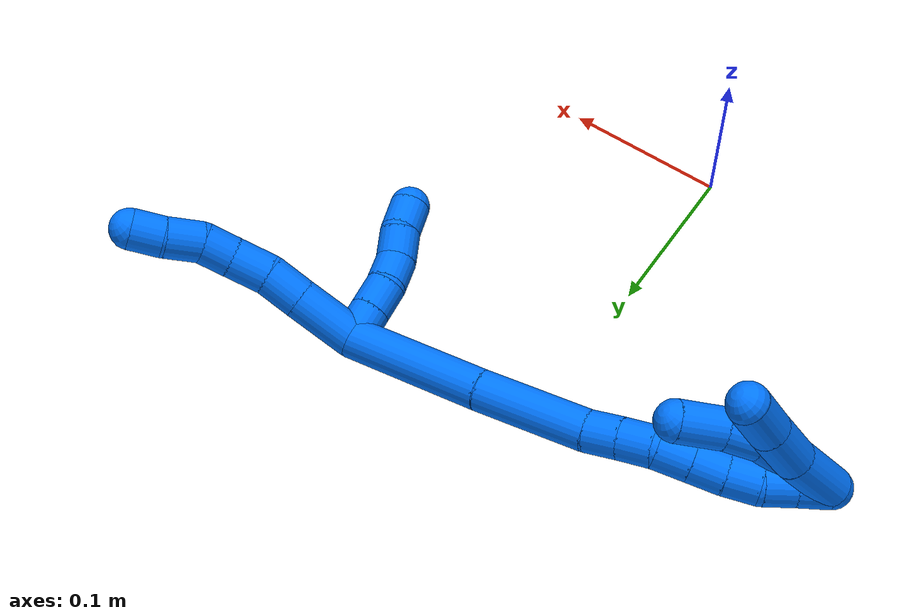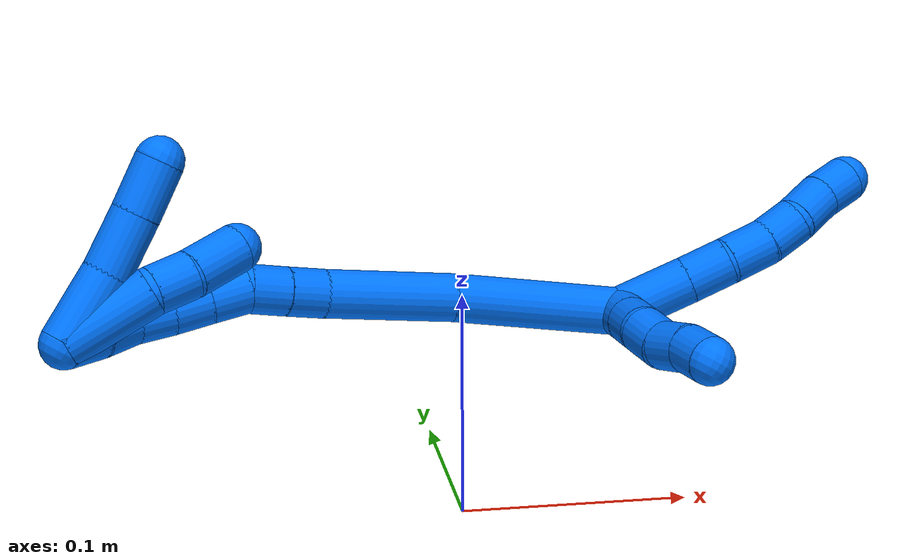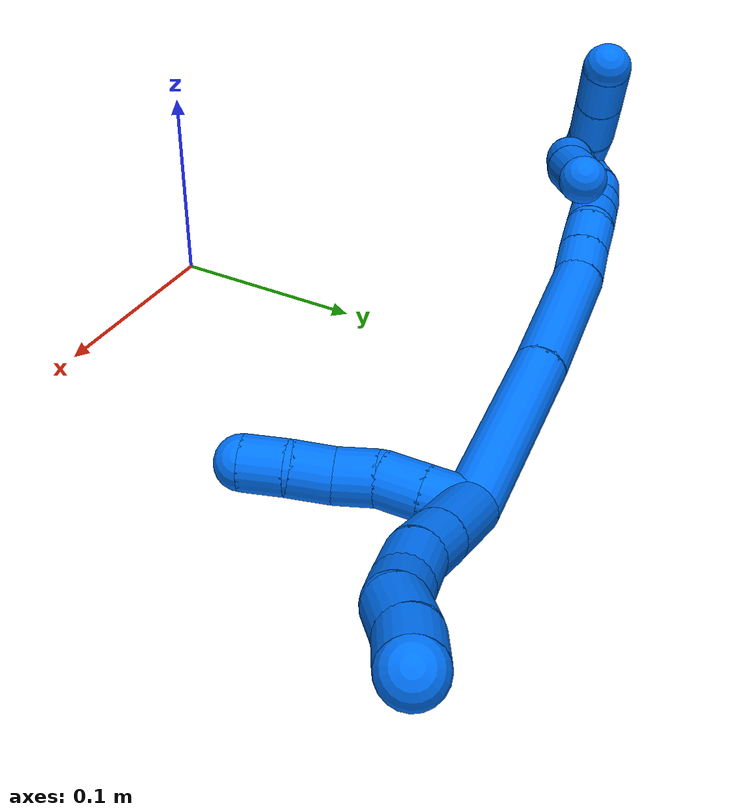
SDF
<sdf version="1.7">
 <world name="default">
  <model name="14">
   <static>0</static>
   <link name="14">
    <collision name="collision-cylinder-e_1_2_8">
     <pose>0.011351 0.003394 -0.015677 -2.92837 0.615837 -2.49242</pose>
     <geometry><cylinder><radius>0.0125</radius><length>0.0393</length></cylinder></geometry>
     <surface>
      <friction><ode><mu>1.16</mu><mu2>1.16</mu2><slip1>0</slip1><slip2>0</slip2></ode></friction>
      <contact><ode><kp>1e+06</kp><kd>1</kd><max_vel>0</max_vel><min_depth>0.001</min_depth></ode></contact>
     </surface>
    </collision>
    <visual name="visual-cylinder-e_1_2_8">
     <pose>0.011351 0.003394 -0.015677 -2.92837 0.615837 -2.49242</pose>
     <geometry><cylinder><radius>0.0125</radius><length>0.0393</length></cylinder></geometry>
     <material><ambient>0 0.462745 1 1</ambient></material>
    </visual>
    <collision name="collision-cylinder-e_2_8_9">
     <pose>0.029283 0.008958 -0.040862 -2.9172 0.593676 -2.43573</pose>
     <geometry><cylinder><radius>0.0125</radius><length>0.023532</length></cylinder></geometry>
     <surface>
      <friction><ode><mu>1.16</mu><mu2>1.16</mu2><slip1>0</slip1><slip2>0</slip2></ode></friction>
      <contact><ode><kp>1e+06</kp><kd>1</kd><max_vel>0</max_vel><min_depth>0.001</min_depth></ode></contact>
     </surface>
    </collision>
    <visual name="visual-cylinder-e_2_8_9">
     <pose>0.029283 0.008958 -0.040862 -2.9172 0.593676 -2.43573</pose>
     <geometry><cylinder><radius>0.0125</radius><length>0.023532</length></cylinder></geometry>
     <material><ambient>0 0.462745 1 1</ambient></material>
    </visual>
    <collision name="collision-cylinder-e_3_9_10">
     <pose>0.043103 0.01096 -0.059959 3.12401 0.646497 3.08911</pose>
     <geometry><cylinder><radius>0.0125</radius><length>0.024031</length></cylinder></geometry>
     <surface>
      <friction><ode><mu>1.16</mu><mu2>1.16</mu2><slip1>0</slip1><slip2>0</slip2></ode></friction>
      <contact><ode><kp>1e+06</kp><kd>1</kd><max_vel>0</max_vel><min_depth>0.001</min_depth></ode></contact>
     </surface>
    </collision>
    <visual name="visual-cylinder-e_3_9_10">
     <pose>0.043103 0.01096 -0.059959 3.12401 0.646497 3.08911</pose>
     <geometry><cylinder><radius>0.0125</radius><length>0.024031</length></cylinder></geometry>
     <material><ambient>0 0.462745 1 1</ambient></material>
    </visual>
    <collision name="collision-cylinder-e_4_10_11">
     <pose>0.054987 0.01023 -0.078438 3.07853 0.480745 2.88562</pose>
     <geometry><cylinder><radius>0.0125</radius><length>0.020094</length></cylinder></geometry>
     <surface>
      <friction><ode><mu>1.16</mu><mu2>1.16</mu2><slip1>0</slip1><slip2>0</slip2></ode></friction>
      <contact><ode><kp>1e+06</kp><kd>1</kd><max_vel>0</max_vel><min_depth>0.001</min_depth></ode></contact>
     </surface>
    </collision>
    <visual name="visual-cylinder-e_4_10_11">
     <pose>0.054987 0.01023 -0.078438 3.07853 0.480745 2.88562</pose>
     <geometry><cylinder><radius>0.0125</radius><length>0.020094</length></cylinder></geometry>
     <material><ambient>0 0.462745 1 1</ambient></material>
    </visual>
    <collision name="collision-cylinder-e_5_11_12">
     <pose>0.064674 0.005329 -0.096729 2.70908 0.453055 1.61873</pose>
     <geometry><cylinder><radius>0.0125</radius><length>0.023031</length></cylinder></geometry>
     <surface>
      <friction><ode><mu>1.16</mu><mu2>1.16</mu2><slip1>0</slip1><slip2>0</slip2></ode></friction>
      <contact><ode><kp>1e+06</kp><kd>1</kd><max_vel>0</max_vel><min_depth>0.001</min_depth></ode></contact>
     </surface>
    </collision>
    <visual name="visual-cylinder-e_5_11_12">
     <pose>0.064674 0.005329 -0.096729 2.70908 0.453055 1.61873</pose>
     <geometry><cylinder><radius>0.0125</radius><length>0.023031</length></cylinder></geometry>
     <material><ambient>0 0.462745 1 1</ambient></material>
    </visual>
    <collision name="collision-cylinder-e_6_12_6">
     <pose>0.075076 -0.001485 -0.114208 2.84438 0.565496 2.18997</pose>
     <geometry><cylinder><radius>0.0125</radius><length>0.020014</length></cylinder></geometry>
     <surface>
      <friction><ode><mu>1.16</mu><mu2>1.16</mu2><slip1>0</slip1><slip2>0</slip2></ode></friction>
      <contact><ode><kp>1e+06</kp><kd>1</kd><max_vel>0</max_vel><min_depth>0.001</min_depth></ode></contact>
     </surface>
    </collision>
    <visual name="visual-cylinder-e_6_12_6">
     <pose>0.075076 -0.001485 -0.114208 2.84438 0.565496 2.18997</pose>
     <geometry><cylinder><radius>0.0125</radius><length>0.020014</length></cylinder></geometry>
     <material><ambient>0 0.462745 1 1</ambient></material>
    </visual>
    <collision name="collision-cylinder-e_1_2_13">
     <pose>0.000159 0.009895 0.001439 -1.42641 0.01587 -0.01373</pose>
     <geometry><cylinder><radius>0.0125</radius><length>0.02</length></cylinder></geometry>
     <surface>
      <friction><ode><mu>1.16</mu><mu2>1.16</mu2><slip1>0</slip1><slip2>0</slip2></ode></friction>
      <contact><ode><kp>1e+06</kp><kd>1</kd><max_vel>0</max_vel><min_depth>0.001</min_depth></ode></contact>
     </surface>
    </collision>
    <visual name="visual-cylinder-e_1_2_13">
     <pose>0.000159 0.009895 0.001439 -1.42641 0.01587 -0.01373</pose>
     <geometry><cylinder><radius>0.0125</radius><length>0.02</length></cylinder></geometry>
     <material><ambient>0 0.462745 1 1</ambient></material>
    </visual>
    <collision name="collision-cylinder-e_2_13_14">
     <pose>0.000431 0.029691 0.004273 -1.43071 0.011395 -0.009901</pose>
     <geometry><cylinder><radius>0.0125</radius><length>0.02</length></cylinder></geometry>
     <surface>
      <friction><ode><mu>1.16</mu><mu2>1.16</mu2><slip1>0</slip1><slip2>0</slip2></ode></friction>
      <contact><ode><kp>1e+06</kp><kd>1</kd><max_vel>0</max_vel><min_depth>0.001</min_depth></ode></contact>
     </surface>
    </collision>
    <visual name="visual-cylinder-e_2_13_14">
     <pose>0.000431 0.029691 0.004273 -1.43071 0.011395 -0.009901</pose>
     <geometry><cylinder><radius>0.0125</radius><length>0.02</length></cylinder></geometry>
     <material><ambient>0 0.462745 1 1</ambient></material>
    </visual>
    <collision name="collision-cylinder-e_3_14_15">
     <pose>0.003185 0.049101 0.00729 -1.40202 0.267087 -0.225811</pose>
     <geometry><cylinder><radius>0.0125</radius><length>0.02</length></cylinder></geometry>
     <surface>
      <friction><ode><mu>1.16</mu><mu2>1.16</mu2><slip1>0</slip1><slip2>0</slip2></ode></friction>
      <contact><ode><kp>1e+06</kp><kd>1</kd><max_vel>0</max_vel><min_depth>0.001</min_depth></ode></contact>
     </surface>
    </collision>
    <visual name="visual-cylinder-e_3_14_15">
     <pose>0.003185 0.049101 0.00729 -1.40202 0.267087 -0.225811</pose>
     <geometry><cylinder><radius>0.0125</radius><length>0.02</length></cylinder></geometry>
     <material><ambient>0 0.462745 1 1</ambient></material>
    </visual>
    <collision name="collision-cylinder-e_4_15_16">
     <pose>0.008197 0.068186 0.007284 -1.739 0.239591 -0.283164</pose>
     <geometry><cylinder><radius>0.0125</radius><length>0.02</length></cylinder></geometry>
     <surface>
      <friction><ode><mu>1.16</mu><mu2>1.16</mu2><slip1>0</slip1><slip2>0</slip2></ode></friction>
      <contact><ode><kp>1e+06</kp><kd>1</kd><max_vel>0</max_vel><min_depth>0.001</min_depth></ode></contact>
     </surface>
    </collision>
    <visual name="visual-cylinder-e_4_15_16">
     <pose>0.008197 0.068186 0.007284 -1.739 0.239591 -0.283164</pose>
     <geometry><cylinder><radius>0.0125</radius><length>0.02</length></cylinder></geometry>
     <material><ambient>0 0.462745 1 1</ambient></material>
    </visual>
    <collision name="collision-cylinder-e_5_16_5">
     <pose>0.012834 0.087466 0.006517 -1.48245 0.228418 -0.209227</pose>
     <geometry><cylinder><radius>0.0125</radius><length>0.02</length></cylinder></geometry>
     <surface>
      <friction><ode><mu>1.16</mu><mu2>1.16</mu2><slip1>0</slip1><slip2>0</slip2></ode></friction>
      <contact><ode><kp>1e+06</kp><kd>1</kd><max_vel>0</max_vel><min_depth>0.001</min_depth></ode></contact>
     </surface>
    </collision>
    <visual name="visual-cylinder-e_5_16_5">
     <pose>0.012834 0.087466 0.006517 -1.48245 0.228418 -0.209227</pose>
     <geometry><cylinder><radius>0.0125</radius><length>0.02</length></cylinder></geometry>
     <material><ambient>0 0.462745 1 1</ambient></material>
    </visual>
    <collision name="collision-cylinder-e_1_2_17">
     <pose>-0.040747 -0.003279 0.018068 0.179552 -1.14739 -0.116208</pose>
     <geometry><cylinder><radius>0.0125</radius><length>0.089386</length></cylinder></geometry>
     <surface>
      <friction><ode><mu>1.16</mu><mu2>1.16</mu2><slip1>0</slip1><slip2>0</slip2></ode></friction>
      <contact><ode><kp>1e+06</kp><kd>1</kd><max_vel>0</max_vel><min_depth>0.001</min_depth></ode></contact>
     </surface>
    </collision>
    <visual name="visual-cylinder-e_1_2_17">
     <pose>-0.040747 -0.003279 0.018068 0.179552 -1.14739 -0.116208</pose>
     <geometry><cylinder><radius>0.0125</radius><length>0.089386</length></cylinder></geometry>
     <material><ambient>0 0.462745 1 1</ambient></material>
    </visual>
    <collision name="collision-cylinder-e_2_17_18">
     <pose>-0.112009 -0.007706 0.051413 0.074948 -1.1055 -0.046248</pose>
     <geometry><cylinder><radius>0.0125</radius><length>0.068292</length></cylinder></geometry>
     <surface>
      <friction><ode><mu>1.16</mu><mu2>1.16</mu2><slip1>0</slip1><slip2>0</slip2></ode></friction>
      <contact><ode><kp>1e+06</kp><kd>1</kd><max_vel>0</max_vel><min_depth>0.001</min_depth></ode></contact>
     </surface>
    </collision>
    <visual name="visual-cylinder-e_2_17_18">
     <pose>-0.112009 -0.007706 0.051413 0.074948 -1.1055 -0.046248</pose>
     <geometry><cylinder><radius>0.0125</radius><length>0.068292</length></cylinder></geometry>
     <material><ambient>0 0.462745 1 1</ambient></material>
    </visual>
    <collision name="collision-cylinder-e_3_18_19">
     <pose>-0.151794 -0.007855 0.070871 -0.234485 -1.13668 0.150157</pose>
     <geometry><cylinder><radius>0.0125</radius><length>0.020432</length></cylinder></geometry>
     <surface>
      <friction><ode><mu>1.16</mu><mu2>1.16</mu2><slip1>0</slip1><slip2>0</slip2></ode></friction>
      <contact><ode><kp>1e+06</kp><kd>1</kd><max_vel>0</max_vel><min_depth>0.001</min_depth></ode></contact>
     </surface>
    </collision>
    <visual name="visual-cylinder-e_3_18_19">
     <pose>-0.151794 -0.007855 0.070871 -0.234485 -1.13668 0.150157</pose>
     <geometry><cylinder><radius>0.0125</radius><length>0.020432</length></cylinder></geometry>
     <material><ambient>0 0.462745 1 1</ambient></material>
    </visual>
    <collision name="collision-cylinder-e_4_19_20">
     <pose>-0.170477 -0.006186 0.079198 -0.160317 -1.15105 0.104141</pose>
     <geometry><cylinder><radius>0.0125</radius><length>0.020619</length></cylinder></geometry>
     <surface>
      <friction><ode><mu>1.16</mu><mu2>1.16</mu2><slip1>0</slip1><slip2>0</slip2></ode></friction>
      <contact><ode><kp>1e+06</kp><kd>1</kd><max_vel>0</max_vel><min_depth>0.001</min_depth></ode></contact>
     </surface>
    </collision>
    <visual name="visual-cylinder-e_4_19_20">
     <pose>-0.170477 -0.006186 0.079198 -0.160317 -1.15105 0.104141</pose>
     <geometry><cylinder><radius>0.0125</radius><length>0.020619</length></cylinder></geometry>
     <material><ambient>0 0.462745 1 1</ambient></material>
    </visual>
    <collision name="collision-cylinder-e_5_20_21">
     <pose>-0.187533 -0.005008 0.090521 -0.070616 -0.815568 0.030517</pose>
     <geometry><cylinder><radius>0.0125</radius><length>0.020989</length></cylinder></geometry>
     <surface>
      <friction><ode><mu>1.16</mu><mu2>1.16</mu2><slip1>0</slip1><slip2>0</slip2></ode></friction>
      <contact><ode><kp>1e+06</kp><kd>1</kd><max_vel>0</max_vel><min_depth>0.001</min_depth></ode></contact>
     </surface>
    </collision>
    <visual name="visual-cylinder-e_5_20_21">
     <pose>-0.187533 -0.005008 0.090521 -0.070616 -0.815568 0.030517</pose>
     <geometry><cylinder><radius>0.0125</radius><length>0.020989</length></cylinder></geometry>
     <material><ambient>0 0.462745 1 1</ambient></material>
    </visual>
    <collision name="collision-cylinder-e_6_21_22">
     <pose>-0.202456 -0.004018 0.104677 -0.068933 -0.805337 0.029371</pose>
     <geometry><cylinder><radius>0.0125</radius><length>0.020197</length></cylinder></geometry>
     <surface>
      <friction><ode><mu>1.16</mu><mu2>1.16</mu2><slip1>0</slip1><slip2>0</slip2></ode></friction>
      <contact><ode><kp>1e+06</kp><kd>1</kd><max_vel>0</max_vel><min_depth>0.001</min_depth></ode></contact>
     </surface>
    </collision>
    <visual name="visual-cylinder-e_6_21_22">
     <pose>-0.202456 -0.004018 0.104677 -0.068933 -0.805337 0.029371</pose>
     <geometry><cylinder><radius>0.0125</radius><length>0.020197</length></cylinder></geometry>
     <material><ambient>0 0.462745 1 1</ambient></material>
    </visual>
    <collision name="collision-cylinder-e_7_22_23">
     <pose>-0.217294 -0.002264 0.11814 -0.193842 -0.852419 0.088232</pose>
     <geometry><cylinder><radius>0.0125</radius><length>0.020076</length></cylinder></geometry>
     <surface>
      <friction><ode><mu>1.16</mu><mu2>1.16</mu2><slip1>0</slip1><slip2>0</slip2></ode></friction>
      <contact><ode><kp>1e+06</kp><kd>1</kd><max_vel>0</max_vel><min_depth>0.001</min_depth></ode></contact>
     </surface>
    </collision>
    <visual name="visual-cylinder-e_7_22_23">
     <pose>-0.217294 -0.002264 0.11814 -0.193842 -0.852419 0.088232</pose>
     <geometry><cylinder><radius>0.0125</radius><length>0.020076</length></cylinder></geometry>
     <material><ambient>0 0.462745 1 1</ambient></material>
    </visual>
    <collision name="collision-cylinder-e_8_23_24">
     <pose>-0.231255 0.002933 0.131226 -0.536203 -0.694959 0.198337</pose>
     <geometry><cylinder><radius>0.0125</radius><length>0.02</length></cylinder></geometry>
     <surface>
      <friction><ode><mu>1.16</mu><mu2>1.16</mu2><slip1>0</slip1><slip2>0</slip2></ode></friction>
      <contact><ode><kp>1e+06</kp><kd>1</kd><max_vel>0</max_vel><min_depth>0.001</min_depth></ode></contact>
     </surface>
    </collision>
    <visual name="visual-cylinder-e_8_23_24">
     <pose>-0.231255 0.002933 0.131226 -0.536203 -0.694959 0.198337</pose>
     <geometry><cylinder><radius>0.0125</radius><length>0.02</length></cylinder></geometry>
     <material><ambient>0 0.462745 1 1</ambient></material>
    </visual>
    <collision name="collision-cylinder-e_9_24_1">
     <pose>-0.24473 0.010363 0.143976 -0.518275 -0.785022 0.218623</pose>
     <geometry><cylinder><radius>0.0125</radius><length>0.020008</length></cylinder></geometry>
     <surface>
      <friction><ode><mu>1.16</mu><mu2>1.16</mu2><slip1>0</slip1><slip2>0</slip2></ode></friction>
      <contact><ode><kp>1e+06</kp><kd>1</kd><max_vel>0</max_vel><min_depth>0.001</min_depth></ode></contact>
     </surface>
    </collision>
    <visual name="visual-cylinder-e_9_24_1">
     <pose>-0.24473 0.010363 0.143976 -0.518275 -0.785022 0.218623</pose>
     <geometry><cylinder><radius>0.0125</radius><length>0.020008</length></cylinder></geometry>
     <material><ambient>0 0.462745 1 1</ambient></material>
    </visual>
    <collision name="collision-cylinder-e_1_1_25">
     <pose>-0.23974 0.01603 0.128847 -3.04035 0.513511 -2.76033</pose>
     <geometry><cylinder><radius>0.0125</radius><length>0.049104</length></cylinder></geometry>
     <surface>
      <friction><ode><mu>1.16</mu><mu2>1.16</mu2><slip1>0</slip1><slip2>0</slip2></ode></friction>
      <contact><ode><kp>1e+06</kp><kd>1</kd><max_vel>0</max_vel><min_depth>0.001</min_depth></ode></contact>
     </surface>
    </collision>
    <visual name="visual-cylinder-e_1_1_25">
     <pose>-0.23974 0.01603 0.128847 -3.04035 0.513511 -2.76033</pose>
     <geometry><cylinder><radius>0.0125</radius><length>0.049104</length></cylinder></geometry>
     <material><ambient>0 0.462745 1 1</ambient></material>
    </visual>
    <collision name="collision-cylinder-e_2_25_26">
     <pose>-0.220746 0.016566 0.09936 2.94616 0.691763 2.61041</pose>
     <geometry><cylinder><radius>0.0125</radius><length>0.021738</length></cylinder></geometry>
     <surface>
      <friction><ode><mu>1.16</mu><mu2>1.16</mu2><slip1>0</slip1><slip2>0</slip2></ode></friction>
      <contact><ode><kp>1e+06</kp><kd>1</kd><max_vel>0</max_vel><min_depth>0.001</min_depth></ode></contact>
     </surface>
    </collision>
    <visual name="visual-cylinder-e_2_25_26">
     <pose>-0.220746 0.016566 0.09936 2.94616 0.691763 2.61041</pose>
     <geometry><cylinder><radius>0.0125</radius><length>0.021738</length></cylinder></geometry>
     <material><ambient>0 0.462745 1 1</ambient></material>
    </visual>
    <collision name="collision-cylinder-e_3_26_4">
     <pose>-0.205661 0.010468 0.07992 2.76253 0.593383 2.02081</pose>
     <geometry><cylinder><radius>0.0125</radius><length>0.029158</length></cylinder></geometry>
     <surface>
      <friction><ode><mu>1.16</mu><mu2>1.16</mu2><slip1>0</slip1><slip2>0</slip2></ode></friction>
      <contact><ode><kp>1e+06</kp><kd>1</kd><max_vel>0</max_vel><min_depth>0.001</min_depth></ode></contact>
     </surface>
    </collision>
    <visual name="visual-cylinder-e_3_26_4">
     <pose>-0.205661 0.010468 0.07992 2.76253 0.593383 2.02081</pose>
     <geometry><cylinder><radius>0.0125</radius><length>0.029158</length></cylinder></geometry>
     <material><ambient>0 0.462745 1 1</ambient></material>
    </visual>
    <collision name="collision-cylinder-e_1_1_27">
     <pose>-0.250793 0.012828 0.130348 3.08904 0.050846 1.53771</pose>
     <geometry><cylinder><radius>0.0125</radius><length>0.039657</length></cylinder></geometry>
     <surface>
      <friction><ode><mu>1.16</mu><mu2>1.16</mu2><slip1>0</slip1><slip2>0</slip2></ode></friction>
      <contact><ode><kp>1e+06</kp><kd>1</kd><max_vel>0</max_vel><min_depth>0.001</min_depth></ode></contact>
     </surface>
    </collision>
    <visual name="visual-cylinder-e_1_1_27">
     <pose>-0.250793 0.012828 0.130348 3.08904 0.050846 1.53771</pose>
     <geometry><cylinder><radius>0.0125</radius><length>0.039657</length></cylinder></geometry>
     <material><ambient>0 0.462745 1 1</ambient></material>
    </visual>
    <collision name="collision-cylinder-e_2_27_28">
     <pose>-0.250694 0.012238 0.09455 -3.11353 -0.056622 2.22134</pose>
     <geometry><cylinder><radius>0.0125</radius><length>0.032108</length></cylinder></geometry>
     <surface>
      <friction><ode><mu>1.16</mu><mu2>1.16</mu2><slip1>0</slip1><slip2>0</slip2></ode></friction>
      <contact><ode><kp>1e+06</kp><kd>1</kd><max_vel>0</max_vel><min_depth>0.001</min_depth></ode></contact>
     </surface>
    </collision>
    <visual name="visual-cylinder-e_2_27_28">
     <pose>-0.250694 0.012238 0.09455 -3.11353 -0.056622 2.22134</pose>
     <geometry><cylinder><radius>0.0125</radius><length>0.032108</length></cylinder></geometry>
     <material><ambient>0 0.462745 1 1</ambient></material>
    </visual>
    <collision name="collision-cylinder-e_3_28_3">
     <pose>-0.252889 0.013206 0.064479 -3.10468 -0.091266 2.37334</pose>
     <geometry><cylinder><radius>0.0125</radius><length>0.028235</length></cylinder></geometry>
     <surface>
      <friction><ode><mu>1.16</mu><mu2>1.16</mu2><slip1>0</slip1><slip2>0</slip2></ode></friction>
      <contact><ode><kp>1e+06</kp><kd>1</kd><max_vel>0</max_vel><min_depth>0.001</min_depth></ode></contact>
     </surface>
    </collision>
    <visual name="visual-cylinder-e_3_28_3">
     <pose>-0.252889 0.013206 0.064479 -3.10468 -0.091266 2.37334</pose>
     <geometry><cylinder><radius>0.0125</radius><length>0.028235</length></cylinder></geometry>
     <material><ambient>0 0.462745 1 1</ambient></material>
    </visual>
    <collision name="collision-sphere-3">
     <pose>-0.254176 0.013725 0.05043 0 -0 0</pose>
     <geometry><sphere><radius>0.0125</radius></sphere></geometry>
     <surface>
      <friction><ode><mu>1.16</mu><mu2>1.16</mu2><slip1>0</slip1><slip2>0</slip2></ode></friction>
      <contact><ode><kp>1e+06</kp><kd>1</kd><max_vel>0</max_vel><min_depth>0.001</min_depth></ode></contact>
     </surface>
    </collision>
    <visual name="visual-sphere-3">
     <pose>-0.254176 0.013725 0.05043 0 -0 0</pose>
     <geometry><sphere><radius>0.0125</radius></sphere></geometry>
     <material><ambient>0 0.462745 1 1</ambient></material>
    </visual>
    <collision name="collision-sphere-28">
     <pose>-0.251603 0.012687 0.078528 0 -0 0</pose>
     <geometry><sphere><radius>0.0125</radius></sphere></geometry>
     <surface>
      <friction><ode><mu>1.16</mu><mu2>1.16</mu2><slip1>0</slip1><slip2>0</slip2></ode></friction>
      <contact><ode><kp>1e+06</kp><kd>1</kd><max_vel>0</max_vel><min_depth>0.001</min_depth></ode></contact>
     </surface>
    </collision>
    <visual name="visual-sphere-28">
     <pose>-0.251603 0.012687 0.078528 0 -0 0</pose>
     <geometry><sphere><radius>0.0125</radius></sphere></geometry>
     <material><ambient>0 0.462745 1 1</ambient></material>
    </visual>
    <collision name="collision-sphere-27">
     <pose>-0.249786 0.011788 0.110572 0 -0 0</pose>
     <geometry><sphere><radius>0.0125</radius></sphere></geometry>
     <surface>
      <friction><ode><mu>1.16</mu><mu2>1.16</mu2><slip1>0</slip1><slip2>0</slip2></ode></friction>
      <contact><ode><kp>1e+06</kp><kd>1</kd><max_vel>0</max_vel><min_depth>0.001</min_depth></ode></contact>
     </surface>
    </collision>
    <visual name="visual-sphere-27">
     <pose>-0.249786 0.011788 0.110572 0 -0 0</pose>
     <geometry><sphere><radius>0.0125</radius></sphere></geometry>
     <material><ambient>0 0.462745 1 1</ambient></material>
    </visual>
    <collision name="collision-sphere-4">
     <pose>-0.197509 0.005995 0.068692 0 -0 0</pose>
     <geometry><sphere><radius>0.0125</radius></sphere></geometry>
     <surface>
      <friction><ode><mu>1.16</mu><mu2>1.16</mu2><slip1>0</slip1><slip2>0</slip2></ode></friction>
      <contact><ode><kp>1e+06</kp><kd>1</kd><max_vel>0</max_vel><min_depth>0.001</min_depth></ode></contact>
     </surface>
    </collision>
    <visual name="visual-sphere-4">
     <pose>-0.197509 0.005995 0.068692 0 -0 0</pose>
     <geometry><sphere><radius>0.0125</radius></sphere></geometry>
     <material><ambient>0 0.462745 1 1</ambient></material>
    </visual>
    <collision name="collision-sphere-26">
     <pose>-0.213813 0.01494 0.091149 0 -0 0</pose>
     <geometry><sphere><radius>0.0125</radius></sphere></geometry>
     <surface>
      <friction><ode><mu>1.16</mu><mu2>1.16</mu2><slip1>0</slip1><slip2>0</slip2></ode></friction>
      <contact><ode><kp>1e+06</kp><kd>1</kd><max_vel>0</max_vel><min_depth>0.001</min_depth></ode></contact>
     </surface>
    </collision>
    <visual name="visual-sphere-26">
     <pose>-0.213813 0.01494 0.091149 0 -0 0</pose>
     <geometry><sphere><radius>0.0125</radius></sphere></geometry>
     <material><ambient>0 0.462745 1 1</ambient></material>
    </visual>
    <collision name="collision-sphere-25">
     <pose>-0.227679 0.018191 0.107571 0 -0 0</pose>
     <geometry><sphere><radius>0.0125</radius></sphere></geometry>
     <surface>
      <friction><ode><mu>1.16</mu><mu2>1.16</mu2><slip1>0</slip1><slip2>0</slip2></ode></friction>
      <contact><ode><kp>1e+06</kp><kd>1</kd><max_vel>0</max_vel><min_depth>0.001</min_depth></ode></contact>
     </surface>
    </collision>
    <visual name="visual-sphere-25">
     <pose>-0.227679 0.018191 0.107571 0 -0 0</pose>
     <geometry><sphere><radius>0.0125</radius></sphere></geometry>
     <material><ambient>0 0.462745 1 1</ambient></material>
    </visual>
    <collision name="collision-sphere-1">
     <pose>-0.251801 0.013868 0.150123 0 -0 0</pose>
     <geometry><sphere><radius>0.0125</radius></sphere></geometry>
     <surface>
      <friction><ode><mu>1.16</mu><mu2>1.16</mu2><slip1>0</slip1><slip2>0</slip2></ode></friction>
      <contact><ode><kp>1e+06</kp><kd>1</kd><max_vel>0</max_vel><min_depth>0.001</min_depth></ode></contact>
     </surface>
    </collision>
    <visual name="visual-sphere-1">
     <pose>-0.251801 0.013868 0.150123 0 -0 0</pose>
     <geometry><sphere><radius>0.0125</radius></sphere></geometry>
     <material><ambient>0 0.462745 1 1</ambient></material>
    </visual>
    <collision name="collision-sphere-24">
     <pose>-0.237659 0.006857 0.137829 0 -0 0</pose>
     <geometry><sphere><radius>0.0125</radius></sphere></geometry>
     <surface>
      <friction><ode><mu>1.16</mu><mu2>1.16</mu2><slip1>0</slip1><slip2>0</slip2></ode></friction>
      <contact><ode><kp>1e+06</kp><kd>1</kd><max_vel>0</max_vel><min_depth>0.001</min_depth></ode></contact>
     </surface>
    </collision>
    <visual name="visual-sphere-24">
     <pose>-0.237659 0.006857 0.137829 0 -0 0</pose>
     <geometry><sphere><radius>0.0125</radius></sphere></geometry>
     <material><ambient>0 0.462745 1 1</ambient></material>
    </visual>
    <collision name="collision-sphere-23">
     <pose>-0.224852 -0.000991 0.124623 0 -0 0</pose>
     <geometry><sphere><radius>0.0125</radius></sphere></geometry>
     <surface>
      <friction><ode><mu>1.16</mu><mu2>1.16</mu2><slip1>0</slip1><slip2>0</slip2></ode></friction>
      <contact><ode><kp>1e+06</kp><kd>1</kd><max_vel>0</max_vel><min_depth>0.001</min_depth></ode></contact>
     </surface>
    </collision>
    <visual name="visual-sphere-23">
     <pose>-0.224852 -0.000991 0.124623 0 -0 0</pose>
     <geometry><sphere><radius>0.0125</radius></sphere></geometry>
     <material><ambient>0 0.462745 1 1</ambient></material>
    </visual>
    <collision name="collision-sphere-22">
     <pose>-0.209737 -0.003536 0.111657 0 -0 0</pose>
     <geometry><sphere><radius>0.0125</radius></sphere></geometry>
     <surface>
      <friction><ode><mu>1.16</mu><mu2>1.16</mu2><slip1>0</slip1><slip2>0</slip2></ode></friction>
      <contact><ode><kp>1e+06</kp><kd>1</kd><max_vel>0</max_vel><min_depth>0.001</min_depth></ode></contact>
     </surface>
    </collision>
    <visual name="visual-sphere-22">
     <pose>-0.209737 -0.003536 0.111657 0 -0 0</pose>
     <geometry><sphere><radius>0.0125</radius></sphere></geometry>
     <material><ambient>0 0.462745 1 1</ambient></material>
    </visual>
    <collision name="collision-sphere-21">
     <pose>-0.195174 -0.0045 0.097697 0 -0 0</pose>
     <geometry><sphere><radius>0.0125</radius></sphere></geometry>
     <surface>
      <friction><ode><mu>1.16</mu><mu2>1.16</mu2><slip1>0</slip1><slip2>0</slip2></ode></friction>
      <contact><ode><kp>1e+06</kp><kd>1</kd><max_vel>0</max_vel><min_depth>0.001</min_depth></ode></contact>
     </surface>
    </collision>
    <visual name="visual-sphere-21">
     <pose>-0.195174 -0.0045 0.097697 0 -0 0</pose>
     <geometry><sphere><radius>0.0125</radius></sphere></geometry>
     <material><ambient>0 0.462745 1 1</ambient></material>
    </visual>
    <collision name="collision-sphere-12">
     <pose>0.069714 0.000989 -0.106129 0 -0 0</pose>
     <geometry><sphere><radius>0.0125</radius></sphere></geometry>
     <surface>
      <friction><ode><mu>1.16</mu><mu2>1.16</mu2><slip1>0</slip1><slip2>0</slip2></ode></friction>
      <contact><ode><kp>1e+06</kp><kd>1</kd><max_vel>0</max_vel><min_depth>0.001</min_depth></ode></contact>
     </surface>
    </collision>
    <visual name="visual-sphere-12">
     <pose>0.069714 0.000989 -0.106129 0 -0 0</pose>
     <geometry><sphere><radius>0.0125</radius></sphere></geometry>
     <material><ambient>0 0.462745 1 1</ambient></material>
    </visual>
    <collision name="collision-sphere-11">
     <pose>0.059633 0.009668 -0.087329 0 -0 0</pose>
     <geometry><sphere><radius>0.0125</radius></sphere></geometry>
     <surface>
      <friction><ode><mu>1.16</mu><mu2>1.16</mu2><slip1>0</slip1><slip2>0</slip2></ode></friction>
      <contact><ode><kp>1e+06</kp><kd>1</kd><max_vel>0</max_vel><min_depth>0.001</min_depth></ode></contact>
     </surface>
    </collision>
    <visual name="visual-sphere-11">
     <pose>0.059633 0.009668 -0.087329 0 -0 0</pose>
     <geometry><sphere><radius>0.0125</radius></sphere></geometry>
     <material><ambient>0 0.462745 1 1</ambient></material>
    </visual>
    <collision name="collision-sphere-10">
     <pose>0.050341 0.010791 -0.069548 0 -0 0</pose>
     <geometry><sphere><radius>0.0125</radius></sphere></geometry>
     <surface>
      <friction><ode><mu>1.16</mu><mu2>1.16</mu2><slip1>0</slip1><slip2>0</slip2></ode></friction>
      <contact><ode><kp>1e+06</kp><kd>1</kd><max_vel>0</max_vel><min_depth>0.001</min_depth></ode></contact>
     </surface>
    </collision>
    <visual name="visual-sphere-10">
     <pose>0.050341 0.010791 -0.069548 0 -0 0</pose>
     <geometry><sphere><radius>0.0125</radius></sphere></geometry>
     <material><ambient>0 0.462745 1 1</ambient></material>
    </visual>
    <collision name="collision-sphere-9">
     <pose>0.035865 0.011129 -0.05037 0 -0 0</pose>
     <geometry><sphere><radius>0.0125</radius></sphere></geometry>
     <surface>
      <friction><ode><mu>1.16</mu><mu2>1.16</mu2><slip1>0</slip1><slip2>0</slip2></ode></friction>
      <contact><ode><kp>1e+06</kp><kd>1</kd><max_vel>0</max_vel><min_depth>0.001</min_depth></ode></contact>
     </surface>
    </collision>
    <visual name="visual-sphere-9">
     <pose>0.035865 0.011129 -0.05037 0 -0 0</pose>
     <geometry><sphere><radius>0.0125</radius></sphere></geometry>
     <material><ambient>0 0.462745 1 1</ambient></material>
    </visual>
    <collision name="collision-sphere-2">
     <geometry><sphere><radius>0.0125</radius></sphere></geometry>
     <surface>
      <friction><ode><mu>1.16</mu><mu2>1.16</mu2><slip1>0</slip1><slip2>0</slip2></ode></friction>
      <contact><ode><kp>1e+06</kp><kd>1</kd><max_vel>0</max_vel><min_depth>0.001</min_depth></ode></contact>
     </surface>
    </collision>
    <visual name="visual-sphere-2">
     <geometry><sphere><radius>0.0125</radius></sphere></geometry>
     <material><ambient>0 0.462745 1 1</ambient></material>
    </visual>
    <collision name="collision-sphere-19">
     <pose>-0.161062 -0.006856 0.07505 0 -0 0</pose>
     <geometry><sphere><radius>0.0125</radius></sphere></geometry>
     <surface>
      <friction><ode><mu>1.16</mu><mu2>1.16</mu2><slip1>0</slip1><slip2>0</slip2></ode></friction>
      <contact><ode><kp>1e+06</kp><kd>1</kd><max_vel>0</max_vel><min_depth>0.001</min_depth></ode></contact>
     </surface>
    </collision>
    <visual name="visual-sphere-19">
     <pose>-0.161062 -0.006856 0.07505 0 -0 0</pose>
     <geometry><sphere><radius>0.0125</radius></sphere></geometry>
     <material><ambient>0 0.462745 1 1</ambient></material>
    </visual>
    <collision name="collision-sphere-8">
     <pose>0.022701 0.006788 -0.031354 0 -0 0</pose>
     <geometry><sphere><radius>0.0125</radius></sphere></geometry>
     <surface>
      <friction><ode><mu>1.16</mu><mu2>1.16</mu2><slip1>0</slip1><slip2>0</slip2></ode></friction>
      <contact><ode><kp>1e+06</kp><kd>1</kd><max_vel>0</max_vel><min_depth>0.001</min_depth></ode></contact>
     </surface>
    </collision>
    <visual name="visual-sphere-8">
     <pose>0.022701 0.006788 -0.031354 0 -0 0</pose>
     <geometry><sphere><radius>0.0125</radius></sphere></geometry>
     <material><ambient>0 0.462745 1 1</ambient></material>
    </visual>
    <collision name="collision-sphere-6">
     <pose>0.080438 -0.00396 -0.122286 0 -0 0</pose>
     <geometry><sphere><radius>0.0125</radius></sphere></geometry>
     <surface>
      <friction><ode><mu>1.16</mu><mu2>1.16</mu2><slip1>0</slip1><slip2>0</slip2></ode></friction>
      <contact><ode><kp>1e+06</kp><kd>1</kd><max_vel>0</max_vel><min_depth>0.001</min_depth></ode></contact>
     </surface>
    </collision>
    <visual name="visual-sphere-6">
     <pose>0.080438 -0.00396 -0.122286 0 -0 0</pose>
     <geometry><sphere><radius>0.0125</radius></sphere></geometry>
     <material><ambient>0 0.462745 1 1</ambient></material>
    </visual>
    <collision name="collision-sphere-13">
     <pose>0.000317 0.019789 0.002877 0 -0 0</pose>
     <geometry><sphere><radius>0.0125</radius></sphere></geometry>
     <surface>
      <friction><ode><mu>1.16</mu><mu2>1.16</mu2><slip1>0</slip1><slip2>0</slip2></ode></friction>
      <contact><ode><kp>1e+06</kp><kd>1</kd><max_vel>0</max_vel><min_depth>0.001</min_depth></ode></contact>
     </surface>
    </collision>
    <visual name="visual-sphere-13">
     <pose>0.000317 0.019789 0.002877 0 -0 0</pose>
     <geometry><sphere><radius>0.0125</radius></sphere></geometry>
     <material><ambient>0 0.462745 1 1</ambient></material>
    </visual>
    <collision name="collision-sphere-14">
     <pose>0.000545 0.039592 0.00567 0 -0 0</pose>
     <geometry><sphere><radius>0.0125</radius></sphere></geometry>
     <surface>
      <friction><ode><mu>1.16</mu><mu2>1.16</mu2><slip1>0</slip1><slip2>0</slip2></ode></friction>
      <contact><ode><kp>1e+06</kp><kd>1</kd><max_vel>0</max_vel><min_depth>0.001</min_depth></ode></contact>
     </surface>
    </collision>
    <visual name="visual-sphere-14">
     <pose>0.000545 0.039592 0.00567 0 -0 0</pose>
     <geometry><sphere><radius>0.0125</radius></sphere></geometry>
     <material><ambient>0 0.462745 1 1</ambient></material>
    </visual>
    <collision name="collision-sphere-15">
     <pose>0.005824 0.058609 0.00891 0 -0 0</pose>
     <geometry><sphere><radius>0.0125</radius></sphere></geometry>
     <surface>
      <friction><ode><mu>1.16</mu><mu2>1.16</mu2><slip1>0</slip1><slip2>0</slip2></ode></friction>
      <contact><ode><kp>1e+06</kp><kd>1</kd><max_vel>0</max_vel><min_depth>0.001</min_depth></ode></contact>
     </surface>
    </collision>
    <visual name="visual-sphere-15">
     <pose>0.005824 0.058609 0.00891 0 -0 0</pose>
     <geometry><sphere><radius>0.0125</radius></sphere></geometry>
     <material><ambient>0 0.462745 1 1</ambient></material>
    </visual>
    <collision name="collision-sphere-16">
     <pose>0.01057 0.077763 0.005657 0 -0 0</pose>
     <geometry><sphere><radius>0.0125</radius></sphere></geometry>
     <surface>
      <friction><ode><mu>1.16</mu><mu2>1.16</mu2><slip1>0</slip1><slip2>0</slip2></ode></friction>
      <contact><ode><kp>1e+06</kp><kd>1</kd><max_vel>0</max_vel><min_depth>0.001</min_depth></ode></contact>
     </surface>
    </collision>
    <visual name="visual-sphere-16">
     <pose>0.01057 0.077763 0.005657 0 -0 0</pose>
     <geometry><sphere><radius>0.0125</radius></sphere></geometry>
     <material><ambient>0 0.462745 1 1</ambient></material>
    </visual>
    <collision name="collision-sphere-5">
     <pose>0.015099 0.097168 0.007376 0 -0 0</pose>
     <geometry><sphere><radius>0.0125</radius></sphere></geometry>
     <surface>
      <friction><ode><mu>1.16</mu><mu2>1.16</mu2><slip1>0</slip1><slip2>0</slip2></ode></friction>
      <contact><ode><kp>1e+06</kp><kd>1</kd><max_vel>0</max_vel><min_depth>0.001</min_depth></ode></contact>
     </surface>
    </collision>
    <visual name="visual-sphere-5">
     <pose>0.015099 0.097168 0.007376 0 -0 0</pose>
     <geometry><sphere><radius>0.0125</radius></sphere></geometry>
     <material><ambient>0 0.462745 1 1</ambient></material>
    </visual>
    <collision name="collision-sphere-17">
     <pose>-0.081493 -0.006559 0.036135 0 -0 0</pose>
     <geometry><sphere><radius>0.0125</radius></sphere></geometry>
     <surface>
      <friction><ode><mu>1.16</mu><mu2>1.16</mu2><slip1>0</slip1><slip2>0</slip2></ode></friction>
      <contact><ode><kp>1e+06</kp><kd>1</kd><max_vel>0</max_vel><min_depth>0.001</min_depth></ode></contact>
     </surface>
    </collision>
    <visual name="visual-sphere-17">
     <pose>-0.081493 -0.006559 0.036135 0 -0 0</pose>
     <geometry><sphere><radius>0.0125</radius></sphere></geometry>
     <material><ambient>0 0.462745 1 1</ambient></material>
    </visual>
    <collision name="collision-sphere-18">
     <pose>-0.142525 -0.008853 0.066691 0 -0 0</pose>
     <geometry><sphere><radius>0.0125</radius></sphere></geometry>
     <surface>
      <friction><ode><mu>1.16</mu><mu2>1.16</mu2><slip1>0</slip1><slip2>0</slip2></ode></friction>
      <contact><ode><kp>1e+06</kp><kd>1</kd><max_vel>0</max_vel><min_depth>0.001</min_depth></ode></contact>
     </surface>
    </collision>
    <visual name="visual-sphere-18">
     <pose>-0.142525 -0.008853 0.066691 0 -0 0</pose>
     <geometry><sphere><radius>0.0125</radius></sphere></geometry>
     <material><ambient>0 0.462745 1 1</ambient></material>
    </visual>
    <collision name="collision-sphere-20">
     <pose>-0.179891 -0.005515 0.083345 0 -0 0</pose>
     <geometry><sphere><radius>0.0125</radius></sphere></geometry>
     <surface>
      <friction><ode><mu>1.16</mu><mu2>1.16</mu2><slip1>0</slip1><slip2>0</slip2></ode></friction>
      <contact><ode><kp>1e+06</kp><kd>1</kd><max_vel>0</max_vel><min_depth>0.001</min_depth></ode></contact>
     </surface>
    </collision>
    <visual name="visual-sphere-20">
     <pose>-0.179891 -0.005515 0.083345 0 -0 0</pose>
     <geometry><sphere><radius>0.0125</radius></sphere></geometry>
     <material><ambient>0 0.462745 1 1</ambient></material>
    </visual>
    <inertial>
     <pose>-0.107675 0.009929 0.043159 0 -0 0</pose>
     <mass>0.75</mass>
     <inertia><ixx>2.5e-05</ixx><ixy>0</ixy><ixz>0</ixz><iyy>0.000148</iyy><iyz>0</iyz><izz>5.9e-05</izz></inertia>
    </inertial>
   </link>
   <pose>0.117566 0.225071 0.011462 2.90548 0.582268 0.047285</pose>
  </model>
 </world>
</sdf>
